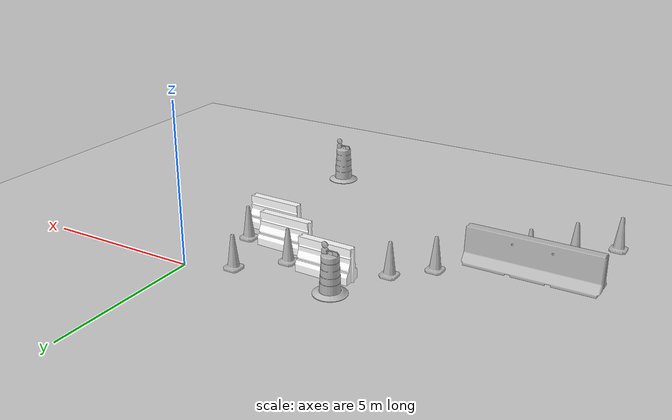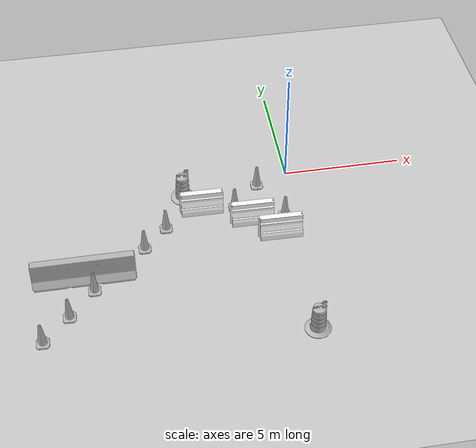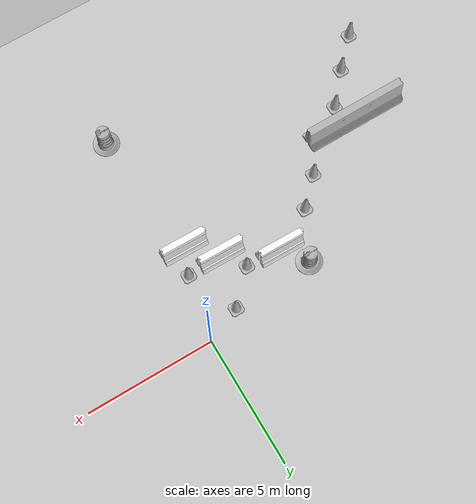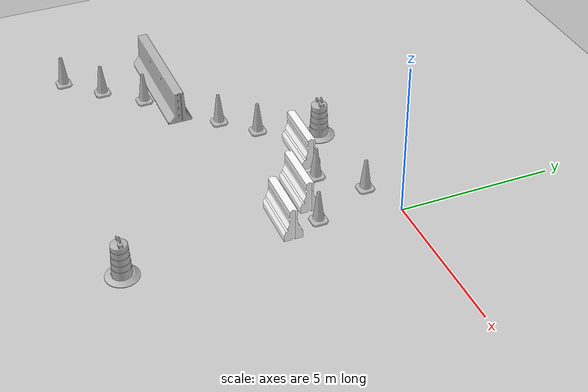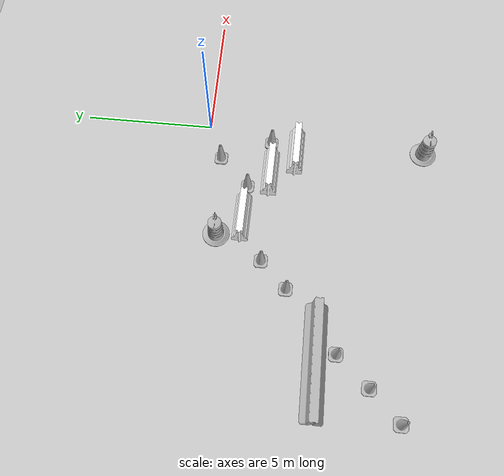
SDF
<sdf version="1.6">
 <world name="default">
  <model name="ground_plane">
   <static>1</static>
   <link name="link">
    <collision name="collision">
     <geometry><plane><normal>0 0 1</normal><size>100 100</size></plane></geometry>
     <surface>
      <contact><collide_bitmask>65535</collide_bitmask></contact>
      <friction><ode><mu>100</mu><mu2>50</mu2></ode></friction>
     </surface>
    </collision>
    <visual name="visual">
     <cast_shadows>0</cast_shadows>
     <geometry><plane><normal>0 0 1</normal><size>100 100</size></plane></geometry>
     <material>
      <script><uri>file://media/materials/scripts/gazebo.material</uri><name>Gazebo/Grey</name></script>
     </material>
    </visual>
   </link>
  </model>
  <model name="Construction Cone_0_clone_0_clone_clone_clone_clone_clone_3_clone_0_clone_clone_clone_1_clone_1_clone_clone_clone_0_clone_4">
   <static>1</static>
   <link name="link">
    <collision name="collision">
     <geometry>
      <mesh><scale>10 10 10</scale><uri>model://construction_cone/meshes/construction_cone.dae</uri></mesh>
     </geometry>
    </collision>
    <visual name="visual">
     <geometry>
      <mesh><scale>10 10 10</scale><uri>model://construction_cone/meshes/construction_cone.dae</uri></mesh>
     </geometry>
    </visual>
    <inertial>
     <inertia><ixx>1</ixx><ixy>0</ixy><ixz>0</ixz><iyy>1</iyy><iyz>0</iyz><izz>1</izz></inertia>
     <mass>1</mass>
    </inertial>
   </link>
   <pose>-1.37068 -0.577641 -0 0 0 -0.001073</pose>
  </model>
  <model name="Construction Cone_0_clone_0_clone_clone_clone_clone_clone_3_clone_0_clone_clone_clone_1_clone_1_clone_clone_clone_0_clone_5">
   <static>1</static>
   <link name="link">
    <collision name="collision">
     <geometry>
      <mesh><scale>10 10 10</scale><uri>model://construction_cone/meshes/construction_cone.dae</uri></mesh>
     </geometry>
    </collision>
    <visual name="visual">
     <geometry>
      <mesh><scale>10 10 10</scale><uri>model://construction_cone/meshes/construction_cone.dae</uri></mesh>
     </geometry>
    </visual>
    <inertial>
     <inertia><ixx>1</ixx><ixy>0</ixy><ixz>0</ixz><iyy>1</iyy><iyz>0</iyz><izz>1</izz></inertia>
     <mass>1</mass>
    </inertial>
   </link>
   <pose>-2.51074 -1.73259 -2e-06 -3e-06 -1e-06 -0.001073</pose>
  </model>
  <model name="drc_practice_white_jersey_barrier_clone_clone_clone_clone_clone_clone_clone_clone_clone_clone_0_clone">
   <static>1</static>
   <link name="link">
    <visual name="visual">
     <geometry>
      <mesh><uri>model://drc_practice_white_jersey_barrier/meshes/jersey_barrier.dae</uri></mesh>
     </geometry>
    </visual>
    <collision name="collision">
     <geometry>
      <mesh><uri>model://drc_practice_white_jersey_barrier/meshes/jersey_barrier.dae</uri></mesh>
     </geometry>
    </collision>
   </link>
   <pose>-3.87046 -1.65198 0 0 0 -1.58176</pose>
  </model>
  <model name="Construction Barrel_clone_clone_0_clone_clone_0_clone">
   <static>1</static>
   <link name="link">
    <inertial>
     <pose>0 0 0.4 0 -0 0</pose>
     <mass>500</mass>
     <inertia><ixx>51.2096</ixx><iyy>51.2096</iyy><izz>25</izz><ixy>0</ixy><ixz>0</ixz><iyz>0</iyz></inertia>
    </inertial>
    <collision name="collision">
     <geometry><mesh><uri>model://construction_barrel/meshes/construction_barrel.dae</uri></mesh></geometry>
    </collision>
    <visual name="visual">
     <geometry><mesh><uri>model://construction_barrel/meshes/construction_barrel.dae</uri></mesh></geometry>
    </visual>
   </link>
   <pose>-4.55992 -0.733064 1e-06 3e-06 2e-06 0.001154</pose>
  </model>
  <model name="drc_practice_white_jersey_barrier_clone_clone_clone_clone_clone_clone_clone_clone_clone_clone_0_clone_clone">
   <static>1</static>
   <link name="link">
    <visual name="visual">
     <geometry>
      <mesh><uri>model://drc_practice_white_jersey_barrier/meshes/jersey_barrier.dae</uri></mesh>
     </geometry>
    </visual>
    <collision name="collision">
     <geometry>
      <mesh><uri>model://drc_practice_white_jersey_barrier/meshes/jersey_barrier.dae</uri></mesh>
     </geometry>
    </collision>
   </link>
   <pose>-1.89029 -2.56073 0 0 0 -1.58176</pose>
  </model>
  <model name="drc_practice_white_jersey_barrier_clone_clone_clone_clone_clone_clone_clone_clone_clone_clone_0_clone_clone_0">
   <static>1</static>
   <link name="link">
    <visual name="visual">
     <geometry>
      <mesh><uri>model://drc_practice_white_jersey_barrier/meshes/jersey_barrier.dae</uri></mesh>
     </geometry>
    </visual>
    <collision name="collision">
     <geometry>
      <mesh><uri>model://drc_practice_white_jersey_barrier/meshes/jersey_barrier.dae</uri></mesh>
     </geometry>
    </collision>
   </link>
   <pose>-0.887833 -3.50294 0 0 0 -1.58176</pose>
  </model>
  <model name="Construction Cone_0_clone_0_clone_clone_clone_clone_clone_3_clone_0_clone_clone_clone_1_clone_1_clone_clone_clone_0_clone_4_clone">
   <static>1</static>
   <link name="link">
    <collision name="collision">
     <geometry>
      <mesh><scale>10 10 10</scale><uri>model://construction_cone/meshes/construction_cone.dae</uri></mesh>
     </geometry>
    </collision>
    <visual name="visual">
     <geometry>
      <mesh><scale>10 10 10</scale><uri>model://construction_cone/meshes/construction_cone.dae</uri></mesh>
     </geometry>
    </visual>
    <inertial>
     <inertia><ixx>1</ixx><ixy>0</ixy><ixz>0</ixz><iyy>1</iyy><iyz>0</iyz><izz>1</izz></inertia>
     <mass>1</mass>
    </inertial>
   </link>
   <pose>-0.520326 -2.51443 -0 0 0 -0.001073</pose>
  </model>
  <model name="Construction Barrel_clone_clone_0_clone_clone_0_clone_clone">
   <static>1</static>
   <link name="link">
    <inertial>
     <pose>0 0 0.4 0 -0 0</pose>
     <mass>500</mass>
     <inertia><ixx>51.2096</ixx><iyy>51.2096</iyy><izz>25</izz><ixy>0</ixy><ixz>0</ixz><iyz>0</iyz></inertia>
    </inertial>
    <collision name="collision">
     <geometry><mesh><uri>model://construction_barrel/meshes/construction_barrel.dae</uri></mesh></geometry>
    </collision>
    <visual name="visual">
     <geometry><mesh><uri>model://construction_barrel/meshes/construction_barrel.dae</uri></mesh></geometry>
    </visual>
   </link>
   <pose>-0.442882 -8.5569 1e-06 3e-06 2e-06 0.001157</pose>
  </model>
  <model name="jersey_barrier_clone_clone_clone_0_clone_clone_clone_clone_0_clone_0_clone">
   <static>1</static>
   <link name="link">
    <visual name="visual">
     <geometry><mesh><uri>model://jersey_barrier/meshes/jersey_barrier.dae</uri></mesh></geometry>
    </visual>
    <collision name="upright">
     <pose>0 0 0.5715 0 -0 0</pose>
     <geometry><box><size>4.06542 0.3063 1.143</size></box></geometry>
    </collision>
    <collision name="base">
     <pose>0 0 0.032258 0 -0 0</pose>
     <geometry><box><size>4.06542 0.8107 0.064516</size></box></geometry>
    </collision>
    <collision name="base2">
     <pose>0 0 0.1 0 -0 0</pose>
     <geometry><box><size>4.06542 0.65 0.1</size></box></geometry>
    </collision>
    <collision name="base3">
     <pose>0 0 0.2 0 -0 0</pose>
     <geometry><box><size>4.06542 0.5 0.1</size></box></geometry>
    </collision>
    <collision name="left-angle">
     <pose>0 -0.224 0.2401 0.9 -0 0</pose>
     <geometry><box><size>4.06542 0.5 0.064516</size></box></geometry>
    </collision>
    <collision name="right-angle">
     <pose>0 0.224 0.2401 -0.9 0 0</pose>
     <geometry><box><size>4.06542 0.5 0.064516</size></box></geometry>
    </collision>
   </link>
   <pose>-8.95984 -4.65251 0 0 -0 0</pose>
  </model>
  <model name="Construction Cone_0_clone_0_clone_clone_clone_clone_clone_3_clone_0_clone_clone_clone_1_clone_1_clone_clone_clone_0_clone_5_clone">
   <static>1</static>
   <link name="link">
    <collision name="collision">
     <geometry>
      <mesh><scale>10 10 10</scale><uri>model://construction_cone/meshes/construction_cone.dae</uri></mesh>
     </geometry>
    </collision>
    <visual name="visual">
     <geometry>
      <mesh><scale>10 10 10</scale><uri>model://construction_cone/meshes/construction_cone.dae</uri></mesh>
     </geometry>
    </visual>
    <inertial>
     <inertia><ixx>1</ixx><ixy>0</ixy><ixz>0</ixz><iyy>1</iyy><iyz>0</iyz><izz>1</izz></inertia>
     <mass>1</mass>
    </inertial>
   </link>
   <pose>-6.46348 -3.49068 -0 0 -1e-06 -0.001073</pose>
  </model>
  <model name="Construction Cone_0_clone_0_clone_clone_clone_clone_clone_3_clone_0_clone_clone_clone_1_clone_1_clone_clone_clone_0_clone_5_clone_0">
   <static>1</static>
   <link name="link">
    <collision name="collision">
     <geometry>
      <mesh><scale>10 10 10</scale><uri>model://construction_cone/meshes/construction_cone.dae</uri></mesh>
     </geometry>
    </collision>
    <visual name="visual">
     <geometry>
      <mesh><scale>10 10 10</scale><uri>model://construction_cone/meshes/construction_cone.dae</uri></mesh>
     </geometry>
    </visual>
    <inertial>
     <inertia><ixx>1</ixx><ixy>0</ixy><ixz>0</ixz><iyy>1</iyy><iyz>0</iyz><izz>1</izz></inertia>
     <mass>1</mass>
    </inertial>
   </link>
   <pose>-5.48144 -2.50551 -0 0 -1e-06 -0.001073</pose>
  </model>
  <model name="Construction Cone_0_clone_0_clone_clone_clone_clone_clone_3_clone_0_clone_clone_clone_1_clone_1_clone_clone_clone_0_clone_5_clone_1">
   <static>1</static>
   <link name="link">
    <collision name="collision">
     <geometry>
      <mesh><scale>10 10 10</scale><uri>model://construction_cone/meshes/construction_cone.dae</uri></mesh>
     </geometry>
    </collision>
    <visual name="visual">
     <geometry>
      <mesh><scale>10 10 10</scale><uri>model://construction_cone/meshes/construction_cone.dae</uri></mesh>
     </geometry>
    </visual>
    <inertial>
     <inertia><ixx>1</ixx><ixy>0</ixy><ixz>0</ixz><iyy>1</iyy><iyz>0</iyz><izz>1</izz></inertia>
     <mass>1</mass>
    </inertial>
   </link>
   <pose>-8.61045 -5.39273 -0 0 0 -0.001073</pose>
  </model>
  <model name="Construction Cone_0_clone_0_clone_clone_clone_clone_clone_3_clone_0_clone_clone_clone_1_clone_1_clone_clone_clone_0_clone_5_clone_2">
   <static>1</static>
   <link name="link">
    <collision name="collision">
     <geometry>
      <mesh><scale>10 10 10</scale><uri>model://construction_cone/meshes/construction_cone.dae</uri></mesh>
     </geometry>
    </collision>
    <visual name="visual">
     <geometry>
      <mesh><scale>10 10 10</scale><uri>model://construction_cone/meshes/construction_cone.dae</uri></mesh>
     </geometry>
    </visual>
    <inertial>
     <inertia><ixx>1</ixx><ixy>0</ixy><ixz>0</ixz><iyy>1</iyy><iyz>0</iyz><izz>1</izz></inertia>
     <mass>1</mass>
    </inertial>
   </link>
   <pose>-9.63777 -6.56092 -0 0 0 -0.001073</pose>
  </model>
  <model name="Construction Cone_0_clone_0_clone_clone_clone_clone_clone_3_clone_0_clone_clone_clone_1_clone_1_clone_clone_clone_0_clone_5_clone_3">
   <static>1</static>
   <link name="link">
    <collision name="collision">
     <geometry>
      <mesh><scale>10 10 10</scale><uri>model://construction_cone/meshes/construction_cone.dae</uri></mesh>
     </geometry>
    </collision>
    <visual name="visual">
     <geometry>
      <mesh><scale>10 10 10</scale><uri>model://construction_cone/meshes/construction_cone.dae</uri></mesh>
     </geometry>
    </visual>
    <inertial>
     <inertia><ixx>1</ixx><ixy>0</ixy><ixz>0</ixz><iyy>1</iyy><iyz>0</iyz><izz>1</izz></inertia>
     <mass>1</mass>
    </inertial>
   </link>
   <pose>-10.6884 -7.6377 -0 0 0 -0.001073</pose>
  </model>
 </world>
</sdf>
